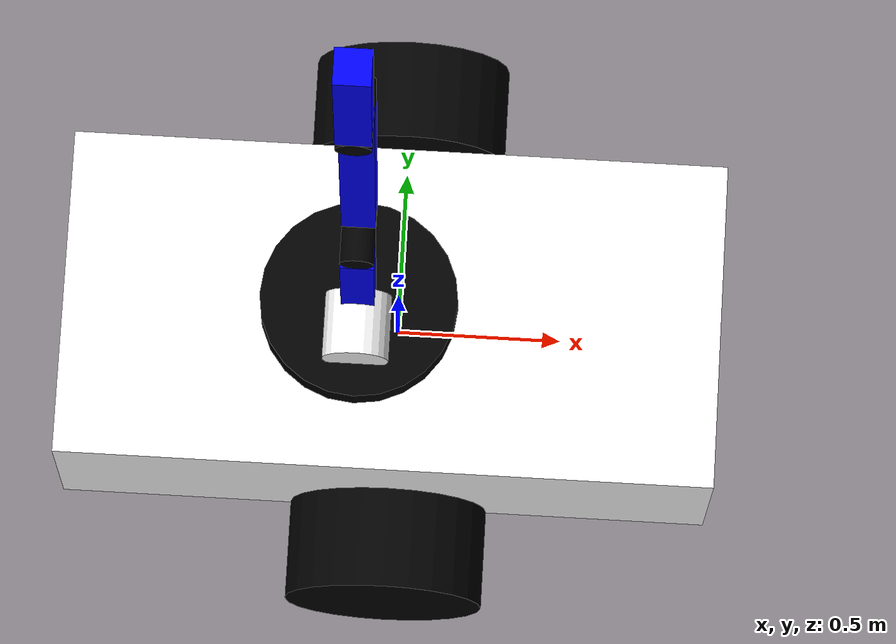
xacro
<?xml version="1.0"?>
<robot xmlns:xacro="http://www.ros.org/wiki/xacro" name="urdf_tutorial">

    <!-- COLOR -->
    <material name="white">
        <color rgba="1 1 1 1" />
    </material>

    <material name="blue">
        <color rgba="0 0 1 1"/>
    </material>

    <material name="black">
        <color rgba="0 0 0 1"/>
    </material>

    <material name="red">
        <color rgba="1 0 0 1"/>
    </material>

    <!-- BASE LINK -->
    <link name="base_link">
    </link>

    <!-- BODY LINK -->
    <joint name="body_joint" type="fixed">
        <parent link="base_link"/>
        <child link="body"/>
        <origin xyz="-0.12 0 0"/>
    </joint>

    <link name="body">
        <visual>
            <origin xyz="0.1 0 0.03"/>
            <geometry>
                <box size="2 1 0.6"/>
            </geometry>
            <material name="white"/>
        </visual>
        <collision>
            <origin xyz="0.1 0 0.03"/>
            <geometry>
                <box size="2 1 0.6"/>
            </geometry>
        </collision>
    </link>

    <!--robot_arm_joint1-->
    <joint name="robot_arm_joint1" type="continuous">
        <parent link="body"/>
        <child link="robot_arm_link1"/>
        <origin xyz="0 0 0.38" rpy="0 0 0" />
        <axis xyz="0 0 1"/>
    </joint>

    <link name="robot_arm_link1">
        <parent link="robot_arm_joint1"/>
        <child link="robot_arm_joint2"/>
        <visual>
            <geometry>
                <cylinder radius="0.3" length="0.1"/>
            </geometry>
            <material name="black"/>
        </visual>
        <collision>
            <geometry>
                <cylinder radius="0.3" length="0.1"/>
            </geometry>
        </collision>
    </link>

    <!--robot_arm_joint2-->
    <joint name="robot_arm_joint2" type="continuous">
        <parent link="robot_arm_link1"/>
        <child link="robot_arm_link2"/>
        <origin xyz="0 -0.1 0.1" rpy="${pi/2} 0 0" />
        <axis xyz="0 0 1"/>
    </joint>

    <link name="robot_arm_link2">
        <visual>
            <geometry>
                <cylinder radius="0.1" length="0.2"/>
            </geometry>
            <material name="white"/>
        </visual>
        <collision>
            <geometry>
                <cylinder radius="0.1" length="0.2"/>
            </geometry>
        </collision>
    </link>

     <!--robot_arm_joint3-->
    <joint name="robot_arm_joint3" type="fixed">
        <parent link="robot_arm_link2"/>
        <child link="robot_arm_link3"/>
        <origin xyz="0 0.25 -0.1" rpy="-${pi/2} 0 0" /> <!-- 위치 조정 -->
        <axis xyz="0 0 0"/>
    </joint>

    <link name="robot_arm_link3">
        <visual>
            <geometry>
                <box size="0.1 0.1 0.6"/> <!-- 크기 두 배 -->
            </geometry>
            <material name="blue"/>
        </visual>
        <collision>
            <geometry>
                <box size="0.1 0.1 0.6"/> <!-- 크기 두 배 -->
            </geometry>
        </collision>
    </link>

    <!--robot_arm_joint4-->
    <joint name="robot_arm_joint4" type="continuous">
        <parent link="robot_arm_link3"/>
        <child link="robot_arm_link4"/>
        <origin xyz="0 0.05 0.35" rpy="${pi/2} 0 0" /> <!-- 위치 조정 -->
        <axis xyz="0 0 1"/>
    </joint>

    <link name="robot_arm_link4">
        <visual>
            <geometry>
                <cylinder radius="0.05" length="0.2"/> <!-- 크기 두 배 -->
            </geometry>
            <material name="black"/>
        </visual>
        <collision>
            <geometry>
                <cylinder radius="0.05" length="0.2"/> <!-- 크기 두 배 -->
            </geometry>
        </collision>
    </link>

    <!--robot_arm_joint5-->
    <joint name="robot_arm_joint5" type="fixed">
        <parent link="robot_arm_link4"/>
        <child link="robot_arm_link5"/>
        <origin xyz="0 0.65 -0.05" rpy="-${pi/2} 0 0" /> <!-- 위치 조정 -->
        <axis xyz="0 0 0"/>
    </joint>

    <link name="robot_arm_link5">
        <visual>
            <geometry>
                <box size="0.1 0.1 1.2"/> <!-- 크기 두 배 -->
            </geometry>
            <material name="blue"/>
        </visual>
        <collision>
            <geometry>
                <box size="0.1 0.1 1.2"/> <!-- 크기 두 배 -->
            </geometry>
        </collision>
    </link>

    <!--robot_arm_joint6-->
    <joint name="robot_arm_joint6" type="continuous">
        <parent link="robot_arm_link5"/>
        <child link="robot_arm_link6"/>
        <origin xyz="0 -0.05 0.65" rpy="${pi/2} 0 0" /> <!-- 위치 조정 -->
        <axis xyz="0 0 1"/>
    </joint>

    <link name="robot_arm_link6">
        <visual>
            <geometry>
                <cylinder radius="0.05" length="0.2"/> <!-- 크기 두 배 -->
            </geometry>
            <material name="black"/>
        </visual>
        <collision>
            <geometry>
                <cylinder radius="0.05" length="0.2"/> <!-- 크기 두 배 -->
            </geometry>
        </collision>
    </link>

    <!--robot_arm_joint7-->
    <joint name="robot_arm_joint7" type="fixed">
        <parent link="robot_arm_link6"/>
        <child link="robot_arm_link7"/>
        <origin xyz="0 0.35 0.05" rpy="-${pi/2} 0 0" /> <!-- 위치 조정 -->
        <axis xyz="0 0 0"/>
    </joint>

    <link name="robot_arm_link7">
        <visual>
            <geometry>
                <box size="0.1 0.1 0.6"/> <!-- 크기 두 배 -->
            </geometry>
            <material name="blue"/>
        </visual>
        <collision>
            <geometry>
                <box size="0.1 0.1 0.6"/> <!-- 크기 두 배 -->
            </geometry>
        </collision>
    </link>

    <!-- LEFT WHEEL LINK -->
    <joint name="left_wheel_joint" type="continuous">
        <parent link="base_link"/>
        <child link="left_wheel"/>
        <origin xyz="0 0.7 0" rpy="-${pi/2} 0 0" />
        <axis xyz="0 0 1"/>
    </joint>

    <link name="left_wheel">
        <visual>
            <geometry>
                <cylinder radius="0.3" length="0.3"/>
            </geometry>
            <material name="black"/>
        </visual>
        <collision>
            <geometry>
                <cylinder radius="0.3" length="0.3"/>
            </geometry>
        </collision>
    </link>

    <!-- RIGHT WHEEL LINK -->
    <joint name="right_wheel_joint" type="continuous">
        <parent link="base_link"/>
        <child link="right_wheel"/>
        <origin xyz="0 -0.7 0" rpy="${pi/2} 0 0" />
        <axis xyz="0 0 -1"/>
    </joint>

    <link name="right_wheel">
        <visual>
            <geometry>
                <cylinder radius="0.3" length="0.3"/>
            </geometry>
            <material name="black"/>
        </visual>
        <collision>
            <geometry>
                <cylinder radius="0.3" length="0.3"/>
            </geometry>
        </collision>
    </link>

    <!-- CASTER WHEEL LINK -->
    <joint name="caster_wheel_joint" type="fixed">
        <parent link="body"/>
        <child link="caster_wheel"/>
        <origin xyz="0.03 0 0"/>
    </joint>

    <link name="caster_wheel">
        <visual>
            <geometry>
                <sphere radius="0.03"/>
            </geometry>
            <material name="black"/>
        </visual>
        <collision>
            <geometry>
                <sphere radius="0.03"/>
            </geometry>
        </collision>
    </link>

    <!-- CAMERA -->
    <joint name="camera_joint" type="fixed">
        <parent link="body"/>
        <child link="camera_link"/>
        <origin xyz="0.20 0 0.03" rpy="0 0 0"/>
    </joint>

    <link name="camera_link">
        <visual>
            <geometry>
                <box size="0.01 0.03 0.03"/>
            </geometry>
            <material name="red"/>
        </visual>
        <collision>
            <geometry>
                <box size="0.01 0.03 0.03"/>
            </geometry>
        </collision>
    </link>

    <joint name="camera_optical_joint" type="fixed">
        <parent link="camera_link"/>
        <child link="camera_link_optical"/>
        <origin xyz="0 0 0" rpy="${-pi/2} 0 ${-pi/2}"/>
    </joint>

    <link name="camera_link_optical">
    </link>

</robot>
